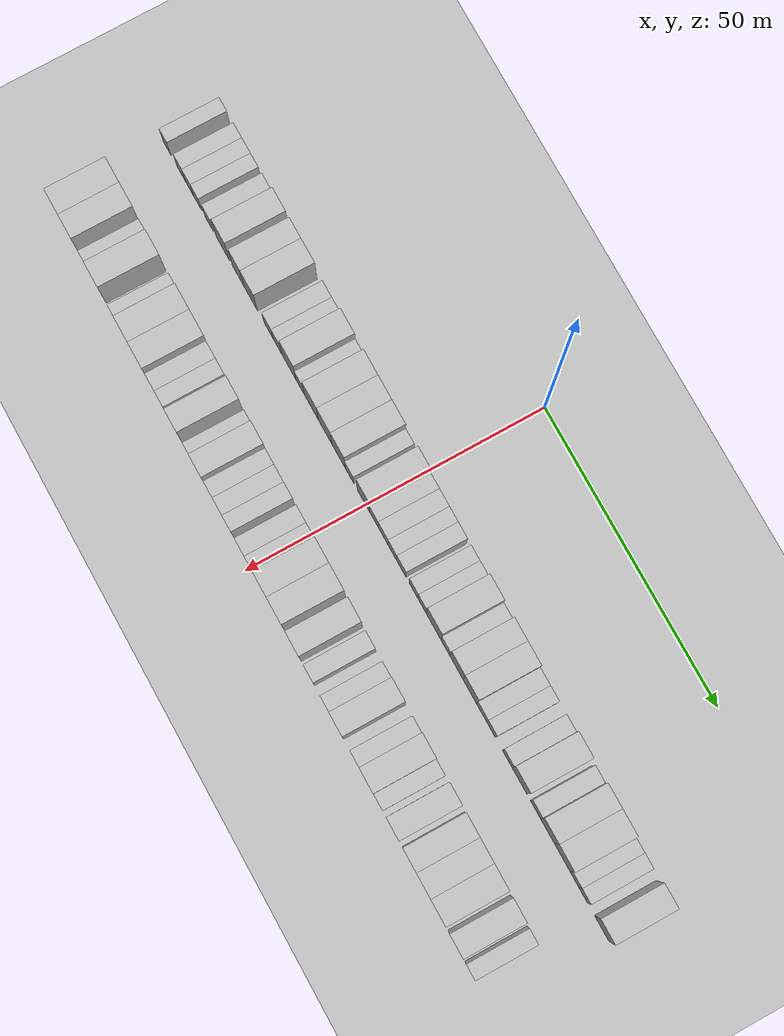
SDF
<sdf version="1.6">
 <world name="default">
  <include><name>ground_plane_1</name><uri>model://HANNAS_ground_plane</uri></include>
  <include>
   <name>ground_plane_2</name>
   <uri>model://HANNAS_ground_plane</uri>
   <pose>100 0 0  0 0 0</pose>
  </include>
  <model name="building_34">
   <static>1</static>
   <pose>25.0000 -61.7127 0 0.000000 0.000000 0.000000</pose>
   <link name="link">
    <pose>0 0 3.00 0 0 0</pose>
    <collision name="collision"><geometry><box><size>10.0000 2.4456 6.0000</size></box></geometry></collision>
    <visual name="visual">
     <cast_shadows>0</cast_shadows>
     <geometry><box><size>10.0000 2.4456 6.0000</size></box></geometry>
     <material>
      <script>
       <uri>model://HANNAS_wall/materials/scripts</uri>
       <uri>model://HANNAS_wall/materials/textures</uri>
       <name>vrc/HANNAS_wall</name>
      </script>
     </material>
    </visual>
   </link>
  </model>
  <model name="building_35">
   <static>1</static>
   <pose>25.0000 -57.1647 0 0.000000 0.000000 0.000000</pose>
   <link name="link">
    <pose>0 0 3.00 0 0 0</pose>
    <collision name="collision"><geometry><box><size>10.0000 2.6504 6.0000</size></box></geometry></collision>
    <visual name="visual">
     <cast_shadows>0</cast_shadows>
     <geometry><box><size>10.0000 2.6504 6.0000</size></box></geometry>
     <material>
      <script>
       <uri>model://HANNAS_wall/materials/scripts</uri>
       <uri>model://HANNAS_wall/materials/textures</uri>
       <name>vrc/HANNAS_wall</name>
      </script>
     </material>
    </visual>
   </link>
  </model>
  <model name="building_36">
   <static>1</static>
   <pose>25.0000 -54.4928 0 0.000000 0.000000 0.000000</pose>
   <link name="link">
    <pose>0 0 3.00 0 0 0</pose>
    <collision name="collision"><geometry><box><size>10.0000 2.6936 6.0000</size></box></geometry></collision>
    <visual name="visual">
     <cast_shadows>0</cast_shadows>
     <geometry><box><size>10.0000 2.6936 6.0000</size></box></geometry>
     <material>
      <script>
       <uri>model://HANNAS_wall/materials/scripts</uri>
       <uri>model://HANNAS_wall/materials/textures</uri>
       <name>vrc/HANNAS_wall</name>
      </script>
     </material>
    </visual>
   </link>
  </model>
  <model name="building_37">
   <static>1</static>
   <pose>25.0000 -51.9126 0 0.000000 0.000000 0.000000</pose>
   <link name="link">
    <pose>0 0 3.00 0 0 0</pose>
    <collision name="collision"><geometry><box><size>10.0000 2.4667 6.0000</size></box></geometry></collision>
    <visual name="visual">
     <cast_shadows>0</cast_shadows>
     <geometry><box><size>10.0000 2.4667 6.0000</size></box></geometry>
     <material>
      <script>
       <uri>model://HANNAS_wall/materials/scripts</uri>
       <uri>model://HANNAS_wall/materials/textures</uri>
       <name>vrc/HANNAS_wall</name>
      </script>
     </material>
    </visual>
   </link>
  </model>
  <model name="building_38">
   <static>1</static>
   <pose>25.0000 -48.3581 0 0.000000 0.000000 0.000000</pose>
   <link name="link">
    <pose>0 0 3.00 0 0 0</pose>
    <collision name="collision"><geometry><box><size>10.0000 2.6423 6.0000</size></box></geometry></collision>
    <visual name="visual">
     <cast_shadows>0</cast_shadows>
     <geometry><box><size>10.0000 2.6423 6.0000</size></box></geometry>
     <material>
      <script>
       <uri>model://HANNAS_wall/materials/scripts</uri>
       <uri>model://HANNAS_wall/materials/textures</uri>
       <name>vrc/HANNAS_wall</name>
      </script>
     </material>
    </visual>
   </link>
  </model>
  <model name="building_39">
   <static>1</static>
   <pose>25.0000 -43.9781 0 0.000000 0.000000 0.000000</pose>
   <link name="link">
    <pose>0 0 4.50 0 0 0</pose>
    <collision name="collision"><geometry><box><size>10.0000 4.1177 9.0000</size></box></geometry></collision>
    <visual name="visual">
     <cast_shadows>0</cast_shadows>
     <geometry><box><size>10.0000 4.1177 9.0000</size></box></geometry>
     <material>
      <script>
       <uri>model://HANNAS_wall/materials/scripts</uri>
       <uri>model://HANNAS_wall/materials/textures</uri>
       <name>vrc/HANNAS_wall</name>
      </script>
     </material>
    </visual>
   </link>
  </model>
  <model name="building_40">
   <static>1</static>
   <pose>25.0000 -39.1123 0 0.000000 0.000000 0.000000</pose>
   <link name="link">
    <pose>0 0 4.50 0 0 0</pose>
    <collision name="collision"><geometry><box><size>10.0000 3.6139 9.0000</size></box></geometry></collision>
    <visual name="visual">
     <cast_shadows>0</cast_shadows>
     <geometry><box><size>10.0000 3.6139 9.0000</size></box></geometry>
     <material>
      <script>
       <uri>model://HANNAS_wall/materials/scripts</uri>
       <uri>model://HANNAS_wall/materials/textures</uri>
       <name>vrc/HANNAS_wall</name>
      </script>
     </material>
    </visual>
   </link>
  </model>
  <model name="building_41">
   <static>1</static>
   <pose>25.0000 -35.2139 0 0.000000 0.000000 0.000000</pose>
   <link name="link">
    <pose>0 0 4.50 0 0 0</pose>
    <collision name="collision"><geometry><box><size>10.0000 4.1830 9.0000</size></box></geometry></collision>
    <visual name="visual">
     <cast_shadows>0</cast_shadows>
     <geometry><box><size>10.0000 4.1830 9.0000</size></box></geometry>
     <material>
      <script>
       <uri>model://HANNAS_wall/materials/scripts</uri>
       <uri>model://HANNAS_wall/materials/textures</uri>
       <name>vrc/HANNAS_wall</name>
      </script>
     </material>
    </visual>
   </link>
  </model>
  <model name="building_42">
   <static>1</static>
   <pose>25.0000 -29.6990 0 0.000000 0.000000 0.000000</pose>
   <link name="link">
    <pose>0 0 3.00 0 0 0</pose>
    <collision name="collision"><geometry><box><size>10.0000 2.8468 6.0000</size></box></geometry></collision>
    <visual name="visual">
     <cast_shadows>0</cast_shadows>
     <geometry><box><size>10.0000 2.8468 6.0000</size></box></geometry>
     <material>
      <script>
       <uri>model://HANNAS_wall/materials/scripts</uri>
       <uri>model://HANNAS_wall/materials/textures</uri>
       <name>vrc/HANNAS_wall</name>
      </script>
     </material>
    </visual>
   </link>
  </model>
  <model name="building_43">
   <static>1</static>
   <pose>25.0000 -26.8879 0 0.000000 0.000000 0.000000</pose>
   <link name="link">
    <pose>0 0 3.00 0 0 0</pose>
    <collision name="collision"><geometry><box><size>10.0000 2.7754 6.0000</size></box></geometry></collision>
    <visual name="visual">
     <cast_shadows>0</cast_shadows>
     <geometry><box><size>10.0000 2.7754 6.0000</size></box></geometry>
     <material>
      <script>
       <uri>model://HANNAS_wall/materials/scripts</uri>
       <uri>model://HANNAS_wall/materials/textures</uri>
       <name>vrc/HANNAS_wall</name>
      </script>
     </material>
    </visual>
   </link>
  </model>
  <model name="building_44">
   <static>1</static>
   <pose>25.0000 -23.3511 0 0.000000 0.000000 0.000000</pose>
   <link name="link">
    <pose>0 0 4.50 0 0 0</pose>
    <collision name="collision"><geometry><box><size>10.0000 4.2981 9.0000</size></box></geometry></collision>
    <visual name="visual">
     <cast_shadows>0</cast_shadows>
     <geometry><box><size>10.0000 4.2981 9.0000</size></box></geometry>
     <material>
      <script>
       <uri>model://HANNAS_wall/materials/scripts</uri>
       <uri>model://HANNAS_wall/materials/textures</uri>
       <name>vrc/HANNAS_wall</name>
      </script>
     </material>
    </visual>
   </link>
  </model>
  <model name="building_45">
   <static>1</static>
   <pose>25.0000 -19.9102 0 0.000000 0.000000 0.000000</pose>
   <link name="link">
    <pose>0 0 3.00 0 0 0</pose>
    <collision name="collision"><geometry><box><size>10.0000 2.5838 6.0000</size></box></geometry></collision>
    <visual name="visual">
     <cast_shadows>0</cast_shadows>
     <geometry><box><size>10.0000 2.5838 6.0000</size></box></geometry>
     <material>
      <script>
       <uri>model://HANNAS_wall/materials/scripts</uri>
       <uri>model://HANNAS_wall/materials/textures</uri>
       <name>vrc/HANNAS_wall</name>
      </script>
     </material>
    </visual>
   </link>
  </model>
  <model name="building_46">
   <static>1</static>
   <pose>25.0000 -16.4606 0 0.000000 0.000000 0.000000</pose>
   <link name="link">
    <pose>0 0 4.50 0 0 0</pose>
    <collision name="collision"><geometry><box><size>10.0000 4.3153 9.0000</size></box></geometry></collision>
    <visual name="visual">
     <cast_shadows>0</cast_shadows>
     <geometry><box><size>10.0000 4.3153 9.0000</size></box></geometry>
     <material>
      <script>
       <uri>model://HANNAS_wall/materials/scripts</uri>
       <uri>model://HANNAS_wall/materials/textures</uri>
       <name>vrc/HANNAS_wall</name>
      </script>
     </material>
    </visual>
   </link>
  </model>
  <model name="building_47">
   <static>1</static>
   <pose>25.0000 -12.2631 0 0.000000 0.000000 0.000000</pose>
   <link name="link">
    <pose>0 0 4.50 0 0 0</pose>
    <collision name="collision"><geometry><box><size>10.0000 4.0795 9.0000</size></box></geometry></collision>
    <visual name="visual">
     <cast_shadows>0</cast_shadows>
     <geometry><box><size>10.0000 4.0795 9.0000</size></box></geometry>
     <material>
      <script>
       <uri>model://HANNAS_wall/materials/scripts</uri>
       <uri>model://HANNAS_wall/materials/textures</uri>
       <name>vrc/HANNAS_wall</name>
      </script>
     </material>
    </visual>
   </link>
  </model>
  <model name="building_48">
   <static>1</static>
   <pose>25.0000 -8.1758 0 0.000000 0.000000 0.000000</pose>
   <link name="link">
    <pose>0 0 4.50 0 0 0</pose>
    <collision name="collision"><geometry><box><size>10.0000 4.0951 9.0000</size></box></geometry></collision>
    <visual name="visual">
     <cast_shadows>0</cast_shadows>
     <geometry><box><size>10.0000 4.0951 9.0000</size></box></geometry>
     <material>
      <script>
       <uri>model://HANNAS_wall/materials/scripts</uri>
       <uri>model://HANNAS_wall/materials/textures</uri>
       <name>vrc/HANNAS_wall</name>
      </script>
     </material>
    </visual>
   </link>
  </model>
  <model name="building_49">
   <static>1</static>
   <pose>25.0000 -4.8378 0 0.000000 0.000000 0.000000</pose>
   <link name="link">
    <pose>0 0 3.00 0 0 0</pose>
    <collision name="collision"><geometry><box><size>10.0000 2.5807 6.0000</size></box></geometry></collision>
    <visual name="visual">
     <cast_shadows>0</cast_shadows>
     <geometry><box><size>10.0000 2.5807 6.0000</size></box></geometry>
     <material>
      <script>
       <uri>model://HANNAS_wall/materials/scripts</uri>
       <uri>model://HANNAS_wall/materials/textures</uri>
       <name>vrc/HANNAS_wall</name>
      </script>
     </material>
    </visual>
   </link>
  </model>
  <model name="building_50">
   <static>1</static>
   <pose>25.0000 -0.6598 0 0.000000 0.000000 0.000000</pose>
   <link name="link">
    <pose>0 0 4.50 0 0 0</pose>
    <collision name="collision"><geometry><box><size>10.0000 3.7753 9.0000</size></box></geometry></collision>
    <visual name="visual">
     <cast_shadows>0</cast_shadows>
     <geometry><box><size>10.0000 3.7753 9.0000</size></box></geometry>
     <material>
      <script>
       <uri>model://HANNAS_wall/materials/scripts</uri>
       <uri>model://HANNAS_wall/materials/textures</uri>
       <name>vrc/HANNAS_wall</name>
      </script>
     </material>
    </visual>
   </link>
  </model>
  <model name="building_51">
   <static>1</static>
   <pose>25.0000 2.5211 0 0.000000 0.000000 0.000000</pose>
   <link name="link">
    <pose>0 0 3.00 0 0 0</pose>
    <collision name="collision"><geometry><box><size>10.0000 2.5867 6.0000</size></box></geometry></collision>
    <visual name="visual">
     <cast_shadows>0</cast_shadows>
     <geometry><box><size>10.0000 2.5867 6.0000</size></box></geometry>
     <material>
      <script>
       <uri>model://HANNAS_wall/materials/scripts</uri>
       <uri>model://HANNAS_wall/materials/textures</uri>
       <name>vrc/HANNAS_wall</name>
      </script>
     </material>
    </visual>
   </link>
  </model>
  <model name="building_52">
   <static>1</static>
   <pose>25.0000 5.2859 0 0.000000 0.000000 0.000000</pose>
   <link name="link">
    <pose>0 0 3.00 0 0 0</pose>
    <collision name="collision"><geometry><box><size>10.0000 2.9429 6.0000</size></box></geometry></collision>
    <visual name="visual">
     <cast_shadows>0</cast_shadows>
     <geometry><box><size>10.0000 2.9429 6.0000</size></box></geometry>
     <material>
      <script>
       <uri>model://HANNAS_wall/materials/scripts</uri>
       <uri>model://HANNAS_wall/materials/textures</uri>
       <name>vrc/HANNAS_wall</name>
      </script>
     </material>
    </visual>
   </link>
  </model>
  <model name="building_53">
   <static>1</static>
   <pose>25.0000 8.0348 0 0.000000 0.000000 0.000000</pose>
   <link name="link">
    <pose>0 0 3.00 0 0 0</pose>
    <collision name="collision"><geometry><box><size>10.0000 2.5548 6.0000</size></box></geometry></collision>
    <visual name="visual">
     <cast_shadows>0</cast_shadows>
     <geometry><box><size>10.0000 2.5548 6.0000</size></box></geometry>
     <material>
      <script>
       <uri>model://HANNAS_wall/materials/scripts</uri>
       <uri>model://HANNAS_wall/materials/textures</uri>
       <name>vrc/HANNAS_wall</name>
      </script>
     </material>
    </visual>
   </link>
  </model>
  <model name="building_54">
   <static>1</static>
   <pose>25.0000 10.6931 0 0.000000 0.000000 0.000000</pose>
   <link name="link">
    <pose>0 0 3.00 0 0 0</pose>
    <collision name="collision"><geometry><box><size>10.0000 2.7617 6.0000</size></box></geometry></collision>
    <visual name="visual">
     <cast_shadows>0</cast_shadows>
     <geometry><box><size>10.0000 2.7617 6.0000</size></box></geometry>
     <material>
      <script>
       <uri>model://HANNAS_wall/materials/scripts</uri>
       <uri>model://HANNAS_wall/materials/textures</uri>
       <name>vrc/HANNAS_wall</name>
      </script>
     </material>
    </visual>
   </link>
  </model>
  <model name="building_55">
   <static>1</static>
   <pose>25.0000 14.3630 0 0.000000 0.000000 0.000000</pose>
   <link name="link">
    <pose>0 0 3.00 0 0 0</pose>
    <collision name="collision"><geometry><box><size>10.0000 2.5780 6.0000</size></box></geometry></collision>
    <visual name="visual">
     <cast_shadows>0</cast_shadows>
     <geometry><box><size>10.0000 2.5780 6.0000</size></box></geometry>
     <material>
      <script>
       <uri>model://HANNAS_wall/materials/scripts</uri>
       <uri>model://HANNAS_wall/materials/textures</uri>
       <name>vrc/HANNAS_wall</name>
      </script>
     </material>
    </visual>
   </link>
  </model>
  <model name="building_56">
   <static>1</static>
   <pose>25.0000 16.9307 0 0.000000 0.000000 0.000000</pose>
   <link name="link">
    <pose>0 0 3.00 0 0 0</pose>
    <collision name="collision"><geometry><box><size>10.0000 2.5575 6.0000</size></box></geometry></collision>
    <visual name="visual">
     <cast_shadows>0</cast_shadows>
     <geometry><box><size>10.0000 2.5575 6.0000</size></box></geometry>
     <material>
      <script>
       <uri>model://HANNAS_wall/materials/scripts</uri>
       <uri>model://HANNAS_wall/materials/textures</uri>
       <name>vrc/HANNAS_wall</name>
      </script>
     </material>
    </visual>
   </link>
  </model>
  <model name="building_57">
   <static>1</static>
   <pose>25.0000 20.3381 0 0.000000 0.000000 0.000000</pose>
   <link name="link">
    <pose>0 0 4.50 0 0 0</pose>
    <collision name="collision"><geometry><box><size>10.0000 4.2573 9.0000</size></box></geometry></collision>
    <visual name="visual">
     <cast_shadows>0</cast_shadows>
     <geometry><box><size>10.0000 4.2573 9.0000</size></box></geometry>
     <material>
      <script>
       <uri>model://HANNAS_wall/materials/scripts</uri>
       <uri>model://HANNAS_wall/materials/textures</uri>
       <name>vrc/HANNAS_wall</name>
      </script>
     </material>
    </visual>
   </link>
  </model>
  <model name="building_58">
   <static>1</static>
   <pose>25.0000 23.8044 0 0.000000 0.000000 0.000000</pose>
   <link name="link">
    <pose>0 0 3.00 0 0 0</pose>
    <collision name="collision"><geometry><box><size>10.0000 2.6753 6.0000</size></box></geometry></collision>
    <visual name="visual">
     <cast_shadows>0</cast_shadows>
     <geometry><box><size>10.0000 2.6753 6.0000</size></box></geometry>
     <material>
      <script>
       <uri>model://HANNAS_wall/materials/scripts</uri>
       <uri>model://HANNAS_wall/materials/textures</uri>
       <name>vrc/HANNAS_wall</name>
      </script>
     </material>
    </visual>
   </link>
  </model>
  <model name="building_59">
   <static>1</static>
   <pose>25.0000 27.0463 0 0.000000 0.000000 0.000000</pose>
   <link name="link">
    <pose>0 0 4.50 0 0 0</pose>
    <collision name="collision"><geometry><box><size>10.0000 3.8084 9.0000</size></box></geometry></collision>
    <visual name="visual">
     <cast_shadows>0</cast_shadows>
     <geometry><box><size>10.0000 3.8084 9.0000</size></box></geometry>
     <material>
      <script>
       <uri>model://HANNAS_wall/materials/scripts</uri>
       <uri>model://HANNAS_wall/materials/textures</uri>
       <name>vrc/HANNAS_wall</name>
      </script>
     </material>
    </visual>
   </link>
  </model>
  <model name="building_60">
   <static>1</static>
   <pose>25.0000 30.9285 0 0.000000 0.000000 0.000000</pose>
   <link name="link">
    <pose>0 0 4.50 0 0 0</pose>
    <collision name="collision"><geometry><box><size>10.0000 3.9560 9.0000</size></box></geometry></collision>
    <visual name="visual">
     <cast_shadows>0</cast_shadows>
     <geometry><box><size>10.0000 3.9560 9.0000</size></box></geometry>
     <material>
      <script>
       <uri>model://HANNAS_wall/materials/scripts</uri>
       <uri>model://HANNAS_wall/materials/textures</uri>
       <name>vrc/HANNAS_wall</name>
      </script>
     </material>
    </visual>
   </link>
  </model>
  <model name="building_61">
   <static>1</static>
   <pose>25.0000 34.3720 0 0.000000 0.000000 0.000000</pose>
   <link name="link">
    <pose>0 0 3.00 0 0 0</pose>
    <collision name="collision"><geometry><box><size>10.0000 2.9311 6.0000</size></box></geometry></collision>
    <visual name="visual">
     <cast_shadows>0</cast_shadows>
     <geometry><box><size>10.0000 2.9311 6.0000</size></box></geometry>
     <material>
      <script>
       <uri>model://HANNAS_wall/materials/scripts</uri>
       <uri>model://HANNAS_wall/materials/textures</uri>
       <name>vrc/HANNAS_wall</name>
      </script>
     </material>
    </visual>
   </link>
  </model>
  <model name="building_62">
   <static>1</static>
   <pose>25.0000 37.1161 0 0.000000 0.000000 0.000000</pose>
   <link name="link">
    <pose>0 0 3.00 0 0 0</pose>
    <collision name="collision"><geometry><box><size>10.0000 2.5571 6.0000</size></box></geometry></collision>
    <visual name="visual">
     <cast_shadows>0</cast_shadows>
     <geometry><box><size>10.0000 2.5571 6.0000</size></box></geometry>
     <material>
      <script>
       <uri>model://HANNAS_wall/materials/scripts</uri>
       <uri>model://HANNAS_wall/materials/textures</uri>
       <name>vrc/HANNAS_wall</name>
      </script>
     </material>
    </visual>
   </link>
  </model>
  <model name="building_63">
   <static>1</static>
   <pose>25.0000 41.8110 0 0.000000 0.000000 0.000000</pose>
   <link name="link">
    <pose>0 0 3.00 0 0 0</pose>
    <collision name="collision"><geometry><box><size>10.0000 2.8327 6.0000</size></box></geometry></collision>
    <visual name="visual">
     <cast_shadows>0</cast_shadows>
     <geometry><box><size>10.0000 2.8327 6.0000</size></box></geometry>
     <material>
      <script>
       <uri>model://HANNAS_wall/materials/scripts</uri>
       <uri>model://HANNAS_wall/materials/textures</uri>
       <name>vrc/HANNAS_wall</name>
      </script>
     </material>
    </visual>
   </link>
  </model>
  <model name="building_64">
   <static>1</static>
   <pose>25.0000 45.3492 0 0.000000 0.000000 0.000000</pose>
   <link name="link">
    <pose>0 0 4.50 0 0 0</pose>
    <collision name="collision"><geometry><box><size>10.0000 4.2435 9.0000</size></box></geometry></collision>
    <visual name="visual">
     <cast_shadows>0</cast_shadows>
     <geometry><box><size>10.0000 4.2435 9.0000</size></box></geometry>
     <material>
      <script>
       <uri>model://HANNAS_wall/materials/scripts</uri>
       <uri>model://HANNAS_wall/materials/textures</uri>
       <name>vrc/HANNAS_wall</name>
      </script>
     </material>
    </visual>
   </link>
  </model>
  <model name="building_65">
   <static>1</static>
   <pose>25.0000 49.8806 0 0.000000 0.000000 0.000000</pose>
   <link name="link">
    <pose>0 0 3.00 0 0 0</pose>
    <collision name="collision"><geometry><box><size>10.0000 2.8192 6.0000</size></box></geometry></collision>
    <visual name="visual">
     <cast_shadows>0</cast_shadows>
     <geometry><box><size>10.0000 2.8192 6.0000</size></box></geometry>
     <material>
      <script>
       <uri>model://HANNAS_wall/materials/scripts</uri>
       <uri>model://HANNAS_wall/materials/textures</uri>
       <name>vrc/HANNAS_wall</name>
      </script>
     </material>
    </visual>
   </link>
  </model>
  <model name="building_66">
   <static>1</static>
   <pose>25.0000 53.3062 0 0.000000 0.000000 0.000000</pose>
   <link name="link">
    <pose>0 0 4.50 0 0 0</pose>
    <collision name="collision"><geometry><box><size>10.0000 4.0319 9.0000</size></box></geometry></collision>
    <visual name="visual">
     <cast_shadows>0</cast_shadows>
     <geometry><box><size>10.0000 4.0319 9.0000</size></box></geometry>
     <material>
      <script>
       <uri>model://HANNAS_wall/materials/scripts</uri>
       <uri>model://HANNAS_wall/materials/textures</uri>
       <name>vrc/HANNAS_wall</name>
      </script>
     </material>
    </visual>
   </link>
  </model>
  <model name="building_67">
   <static>1</static>
   <pose>25.0000 57.5089 0 0.000000 0.000000 0.000000</pose>
   <link name="link">
    <pose>0 0 4.50 0 0 0</pose>
    <collision name="collision"><geometry><box><size>10.0000 4.3735 9.0000</size></box></geometry></collision>
    <visual name="visual">
     <cast_shadows>0</cast_shadows>
     <geometry><box><size>10.0000 4.3735 9.0000</size></box></geometry>
     <material>
      <script>
       <uri>model://HANNAS_wall/materials/scripts</uri>
       <uri>model://HANNAS_wall/materials/textures</uri>
       <name>vrc/HANNAS_wall</name>
      </script>
     </material>
    </visual>
   </link>
  </model>
  <model name="building_68">
   <static>1</static>
   <pose>25.0000 60.9676 0 0.000000 0.000000 0.000000</pose>
   <link name="link">
    <pose>0 0 3.00 0 0 0</pose>
    <collision name="collision"><geometry><box><size>10.0000 2.5440 6.0000</size></box></geometry></collision>
    <visual name="visual">
     <cast_shadows>0</cast_shadows>
     <geometry><box><size>10.0000 2.5440 6.0000</size></box></geometry>
     <material>
      <script>
       <uri>model://HANNAS_wall/materials/scripts</uri>
       <uri>model://HANNAS_wall/materials/textures</uri>
       <name>vrc/HANNAS_wall</name>
      </script>
     </material>
    </visual>
   </link>
  </model>
  <model name="building_69">
   <static>1</static>
   <pose>25.0000 63.4900 0 0.000000 0.000000 0.000000</pose>
   <link name="link">
    <pose>0 0 3.00 0 0 0</pose>
    <collision name="collision"><geometry><box><size>10.0000 2.5008 6.0000</size></box></geometry></collision>
    <visual name="visual">
     <cast_shadows>0</cast_shadows>
     <geometry><box><size>10.0000 2.5008 6.0000</size></box></geometry>
     <material>
      <script>
       <uri>model://HANNAS_wall/materials/scripts</uri>
       <uri>model://HANNAS_wall/materials/textures</uri>
       <name>vrc/HANNAS_wall</name>
      </script>
     </material>
    </visual>
   </link>
  </model>
  <model name="building_70">
   <static>1</static>
   <pose>25.0000 68.7523 0 0.000000 0.000000 0.000000</pose>
   <link name="link">
    <pose>0 0 4.50 0 0 0</pose>
    <collision name="collision"><geometry><box><size>10.0000 4.0240 9.0000</size></box></geometry></collision>
    <visual name="visual">
     <cast_shadows>0</cast_shadows>
     <geometry><box><size>10.0000 4.0240 9.0000</size></box></geometry>
     <material>
      <script>
       <uri>model://HANNAS_wall/materials/scripts</uri>
       <uri>model://HANNAS_wall/materials/textures</uri>
       <name>vrc/HANNAS_wall</name>
      </script>
     </material>
    </visual>
   </link>
  </model>
  <model name="building_142">
   <static>1</static>
   <pose>44.0000 -59.5723 0 0.000000 0.000000 0.000000</pose>
   <link name="link">
    <pose>0 0 4.50 0 0 0</pose>
    <collision name="collision"><geometry><box><size>10.0000 4.3911 9.0000</size></box></geometry></collision>
    <visual name="visual">
     <cast_shadows>0</cast_shadows>
     <geometry><box><size>10.0000 4.3911 9.0000</size></box></geometry>
     <material>
      <script>
       <uri>model://HANNAS_wall/materials/scripts</uri>
       <uri>model://HANNAS_wall/materials/textures</uri>
       <name>vrc/HANNAS_wall</name>
      </script>
     </material>
    </visual>
   </link>
  </model>
  <model name="building_143">
   <static>1</static>
   <pose>44.0000 -55.3011 0 0.000000 0.000000 0.000000</pose>
   <link name="link">
    <pose>0 0 4.50 0 0 0</pose>
    <collision name="collision"><geometry><box><size>10.0000 4.1513 9.0000</size></box></geometry></collision>
    <visual name="visual">
     <cast_shadows>0</cast_shadows>
     <geometry><box><size>10.0000 4.1513 9.0000</size></box></geometry>
     <material>
      <script>
       <uri>model://HANNAS_wall/materials/scripts</uri>
       <uri>model://HANNAS_wall/materials/textures</uri>
       <name>vrc/HANNAS_wall</name>
      </script>
     </material>
    </visual>
   </link>
  </model>
  <model name="building_144">
   <static>1</static>
   <pose>44.0000 -50.7851 0 0.000000 0.000000 0.000000</pose>
   <link name="link">
    <pose>0 0 3.00 0 0 0</pose>
    <collision name="collision"><geometry><box><size>10.0000 2.8808 6.0000</size></box></geometry></collision>
    <visual name="visual">
     <cast_shadows>0</cast_shadows>
     <geometry><box><size>10.0000 2.8808 6.0000</size></box></geometry>
     <material>
      <script>
       <uri>model://HANNAS_wall/materials/scripts</uri>
       <uri>model://HANNAS_wall/materials/textures</uri>
       <name>vrc/HANNAS_wall</name>
      </script>
     </material>
    </visual>
   </link>
  </model>
  <model name="building_145">
   <static>1</static>
   <pose>44.0000 -47.1643 0 0.000000 0.000000 0.000000</pose>
   <link name="link">
    <pose>0 0 4.50 0 0 0</pose>
    <collision name="collision"><geometry><box><size>10.0000 4.3607 9.0000</size></box></geometry></collision>
    <visual name="visual">
     <cast_shadows>0</cast_shadows>
     <geometry><box><size>10.0000 4.3607 9.0000</size></box></geometry>
     <material>
      <script>
       <uri>model://HANNAS_wall/materials/scripts</uri>
       <uri>model://HANNAS_wall/materials/textures</uri>
       <name>vrc/HANNAS_wall</name>
      </script>
     </material>
    </visual>
   </link>
  </model>
  <model name="building_146">
   <static>1</static>
   <pose>44.0000 -41.5841 0 0.000000 0.000000 0.000000</pose>
   <link name="link">
    <pose>0 0 3.00 0 0 0</pose>
    <collision name="collision"><geometry><box><size>10.0000 2.7998 6.0000</size></box></geometry></collision>
    <visual name="visual">
     <cast_shadows>0</cast_shadows>
     <geometry><box><size>10.0000 2.7998 6.0000</size></box></geometry>
     <material>
      <script>
       <uri>model://HANNAS_wall/materials/scripts</uri>
       <uri>model://HANNAS_wall/materials/textures</uri>
       <name>vrc/HANNAS_wall</name>
      </script>
     </material>
    </visual>
   </link>
  </model>
  <model name="building_147">
   <static>1</static>
   <pose>44.0000 -37.9833 0 0.000000 0.000000 0.000000</pose>
   <link name="link">
    <pose>0 0 4.50 0 0 0</pose>
    <collision name="collision"><geometry><box><size>10.0000 4.4017 9.0000</size></box></geometry></collision>
    <visual name="visual">
     <cast_shadows>0</cast_shadows>
     <geometry><box><size>10.0000 4.4017 9.0000</size></box></geometry>
     <material>
      <script>
       <uri>model://HANNAS_wall/materials/scripts</uri>
       <uri>model://HANNAS_wall/materials/textures</uri>
       <name>vrc/HANNAS_wall</name>
      </script>
     </material>
    </visual>
   </link>
  </model>
  <model name="building_148">
   <static>1</static>
   <pose>44.0000 -33.5647 0 0.000000 0.000000 0.000000</pose>
   <link name="link">
    <pose>0 0 4.50 0 0 0</pose>
    <collision name="collision"><geometry><box><size>10.0000 4.4355 9.0000</size></box></geometry></collision>
    <visual name="visual">
     <cast_shadows>0</cast_shadows>
     <geometry><box><size>10.0000 4.4355 9.0000</size></box></geometry>
     <material>
      <script>
       <uri>model://HANNAS_wall/materials/scripts</uri>
       <uri>model://HANNAS_wall/materials/textures</uri>
       <name>vrc/HANNAS_wall</name>
      </script>
     </material>
    </visual>
   </link>
  </model>
  <model name="building_149">
   <static>1</static>
   <pose>44.0000 -29.8882 0 0.000000 0.000000 0.000000</pose>
   <link name="link">
    <pose>0 0 3.00 0 0 0</pose>
    <collision name="collision"><geometry><box><size>10.0000 2.9176 6.0000</size></box></geometry></collision>
    <visual name="visual">
     <cast_shadows>0</cast_shadows>
     <geometry><box><size>10.0000 2.9176 6.0000</size></box></geometry>
     <material>
      <script>
       <uri>model://HANNAS_wall/materials/scripts</uri>
       <uri>model://HANNAS_wall/materials/textures</uri>
       <name>vrc/HANNAS_wall</name>
      </script>
     </material>
    </visual>
   </link>
  </model>
  <model name="building_150">
   <static>1</static>
   <pose>44.0000 -27.0637 0 0.000000 0.000000 0.000000</pose>
   <link name="link">
    <pose>0 0 3.00 0 0 0</pose>
    <collision name="collision"><geometry><box><size>10.0000 2.7314 6.0000</size></box></geometry></collision>
    <visual name="visual">
     <cast_shadows>0</cast_shadows>
     <geometry><box><size>10.0000 2.7314 6.0000</size></box></geometry>
     <material>
      <script>
       <uri>model://HANNAS_wall/materials/scripts</uri>
       <uri>model://HANNAS_wall/materials/textures</uri>
       <name>vrc/HANNAS_wall</name>
      </script>
     </material>
    </visual>
   </link>
  </model>
  <model name="building_151">
   <static>1</static>
   <pose>44.0000 -22.7349 0 0.000000 0.000000 0.000000</pose>
   <link name="link">
    <pose>0 0 4.50 0 0 0</pose>
    <collision name="collision"><geometry><box><size>10.0000 3.9262 9.0000</size></box></geometry></collision>
    <visual name="visual">
     <cast_shadows>0</cast_shadows>
     <geometry><box><size>10.0000 3.9262 9.0000</size></box></geometry>
     <material>
      <script>
       <uri>model://HANNAS_wall/materials/scripts</uri>
       <uri>model://HANNAS_wall/materials/textures</uri>
       <name>vrc/HANNAS_wall</name>
      </script>
     </material>
    </visual>
   </link>
  </model>
  <model name="building_152">
   <static>1</static>
   <pose>44.0000 -18.5102 0 0.000000 0.000000 0.000000</pose>
   <link name="link">
    <pose>0 0 3.00 0 0 0</pose>
    <collision name="collision"><geometry><box><size>10.0000 2.5233 6.0000</size></box></geometry></collision>
    <visual name="visual">
     <cast_shadows>0</cast_shadows>
     <geometry><box><size>10.0000 2.5233 6.0000</size></box></geometry>
     <material>
      <script>
       <uri>model://HANNAS_wall/materials/scripts</uri>
       <uri>model://HANNAS_wall/materials/textures</uri>
       <name>vrc/HANNAS_wall</name>
      </script>
     </material>
    </visual>
   </link>
  </model>
  <model name="building_153">
   <static>1</static>
   <pose>44.0000 -15.3217 0 0.000000 0.000000 0.000000</pose>
   <link name="link">
    <pose>0 0 4.50 0 0 0</pose>
    <collision name="collision"><geometry><box><size>10.0000 3.8537 9.0000</size></box></geometry></collision>
    <visual name="visual">
     <cast_shadows>0</cast_shadows>
     <geometry><box><size>10.0000 3.8537 9.0000</size></box></geometry>
     <material>
      <script>
       <uri>model://HANNAS_wall/materials/scripts</uri>
       <uri>model://HANNAS_wall/materials/textures</uri>
       <name>vrc/HANNAS_wall</name>
      </script>
     </material>
    </visual>
   </link>
  </model>
  <model name="building_154">
   <static>1</static>
   <pose>44.0000 -12.0341 0 0.000000 0.000000 0.000000</pose>
   <link name="link">
    <pose>0 0 3.00 0 0 0</pose>
    <collision name="collision"><geometry><box><size>10.0000 2.7215 6.0000</size></box></geometry></collision>
    <visual name="visual">
     <cast_shadows>0</cast_shadows>
     <geometry><box><size>10.0000 2.7215 6.0000</size></box></geometry>
     <material>
      <script>
       <uri>model://HANNAS_wall/materials/scripts</uri>
       <uri>model://HANNAS_wall/materials/textures</uri>
       <name>vrc/HANNAS_wall</name>
      </script>
     </material>
    </visual>
   </link>
  </model>
  <model name="building_155">
   <static>1</static>
   <pose>44.0000 -9.2175 0 0.000000 0.000000 0.000000</pose>
   <link name="link">
    <pose>0 0 3.00 0 0 0</pose>
    <collision name="collision"><geometry><box><size>10.0000 2.9118 6.0000</size></box></geometry></collision>
    <visual name="visual">
     <cast_shadows>0</cast_shadows>
     <geometry><box><size>10.0000 2.9118 6.0000</size></box></geometry>
     <material>
      <script>
       <uri>model://HANNAS_wall/materials/scripts</uri>
       <uri>model://HANNAS_wall/materials/textures</uri>
       <name>vrc/HANNAS_wall</name>
      </script>
     </material>
    </visual>
   </link>
  </model>
  <model name="building_156">
   <static>1</static>
   <pose>44.0000 -6.3921 0 0.000000 0.000000 0.000000</pose>
   <link name="link">
    <pose>0 0 3.00 0 0 0</pose>
    <collision name="collision"><geometry><box><size>10.0000 2.7390 6.0000</size></box></geometry></collision>
    <visual name="visual">
     <cast_shadows>0</cast_shadows>
     <geometry><box><size>10.0000 2.7390 6.0000</size></box></geometry>
     <material>
      <script>
       <uri>model://HANNAS_wall/materials/scripts</uri>
       <uri>model://HANNAS_wall/materials/textures</uri>
       <name>vrc/HANNAS_wall</name>
      </script>
     </material>
    </visual>
   </link>
  </model>
  <model name="building_157">
   <static>1</static>
   <pose>44.0000 -2.5382 0 0.000000 0.000000 0.000000</pose>
   <link name="link">
    <pose>0 0 3.00 0 0 0</pose>
    <collision name="collision"><geometry><box><size>10.0000 2.9688 6.0000</size></box></geometry></collision>
    <visual name="visual">
     <cast_shadows>0</cast_shadows>
     <geometry><box><size>10.0000 2.9688 6.0000</size></box></geometry>
     <material>
      <script>
       <uri>model://HANNAS_wall/materials/scripts</uri>
       <uri>model://HANNAS_wall/materials/textures</uri>
       <name>vrc/HANNAS_wall</name>
      </script>
     </material>
    </visual>
   </link>
  </model>
  <model name="building_158">
   <static>1</static>
   <pose>44.0000 0.3325 0 0.000000 0.000000 0.000000</pose>
   <link name="link">
    <pose>0 0 3.00 0 0 0</pose>
    <collision name="collision"><geometry><box><size>10.0000 2.7726 6.0000</size></box></geometry></collision>
    <visual name="visual">
     <cast_shadows>0</cast_shadows>
     <geometry><box><size>10.0000 2.7726 6.0000</size></box></geometry>
     <material>
      <script>
       <uri>model://HANNAS_wall/materials/scripts</uri>
       <uri>model://HANNAS_wall/materials/textures</uri>
       <name>vrc/HANNAS_wall</name>
      </script>
     </material>
    </visual>
   </link>
  </model>
  <model name="building_159">
   <static>1</static>
   <pose>44.0000 3.8467 0 0.000000 0.000000 0.000000</pose>
   <link name="link">
    <pose>0 0 4.50 0 0 0</pose>
    <collision name="collision"><geometry><box><size>10.0000 4.2558 9.0000</size></box></geometry></collision>
    <visual name="visual">
     <cast_shadows>0</cast_shadows>
     <geometry><box><size>10.0000 4.2558 9.0000</size></box></geometry>
     <material>
      <script>
       <uri>model://HANNAS_wall/materials/scripts</uri>
       <uri>model://HANNAS_wall/materials/textures</uri>
       <name>vrc/HANNAS_wall</name>
      </script>
     </material>
    </visual>
   </link>
  </model>
  <model name="building_160">
   <static>1</static>
   <pose>44.0000 8.1950 0 0.000000 0.000000 0.000000</pose>
   <link name="link">
    <pose>0 0 4.50 0 0 0</pose>
    <collision name="collision"><geometry><box><size>10.0000 4.4410 9.0000</size></box></geometry></collision>
    <visual name="visual">
     <cast_shadows>0</cast_shadows>
     <geometry><box><size>10.0000 4.4410 9.0000</size></box></geometry>
     <material>
      <script>
       <uri>model://HANNAS_wall/materials/scripts</uri>
       <uri>model://HANNAS_wall/materials/textures</uri>
       <name>vrc/HANNAS_wall</name>
      </script>
     </material>
    </visual>
   </link>
  </model>
  <model name="building_161">
   <static>1</static>
   <pose>44.0000 13.4465 0 0.000000 0.000000 0.000000</pose>
   <link name="link">
    <pose>0 0 4.50 0 0 0</pose>
    <collision name="collision"><geometry><box><size>10.0000 4.0620 9.0000</size></box></geometry></collision>
    <visual name="visual">
     <cast_shadows>0</cast_shadows>
     <geometry><box><size>10.0000 4.0620 9.0000</size></box></geometry>
     <material>
      <script>
       <uri>model://HANNAS_wall/materials/scripts</uri>
       <uri>model://HANNAS_wall/materials/textures</uri>
       <name>vrc/HANNAS_wall</name>
      </script>
     </material>
    </visual>
   </link>
  </model>
  <model name="building_162">
   <static>1</static>
   <pose>44.0000 17.9593 0 0.000000 0.000000 0.000000</pose>
   <link name="link">
    <pose>0 0 3.00 0 0 0</pose>
    <collision name="collision"><geometry><box><size>10.0000 2.9635 6.0000</size></box></geometry></collision>
    <visual name="visual">
     <cast_shadows>0</cast_shadows>
     <geometry><box><size>10.0000 2.9635 6.0000</size></box></geometry>
     <material>
      <script>
       <uri>model://HANNAS_wall/materials/scripts</uri>
       <uri>model://HANNAS_wall/materials/textures</uri>
       <name>vrc/HANNAS_wall</name>
      </script>
     </material>
    </visual>
   </link>
  </model>
  <model name="building_163">
   <static>1</static>
   <pose>44.0000 22.8355 0 0.000000 0.000000 0.000000</pose>
   <link name="link">
    <pose>0 0 3.00 0 0 0</pose>
    <collision name="collision"><geometry><box><size>10.0000 2.7889 6.0000</size></box></geometry></collision>
    <visual name="visual">
     <cast_shadows>0</cast_shadows>
     <geometry><box><size>10.0000 2.7889 6.0000</size></box></geometry>
     <material>
      <script>
       <uri>model://HANNAS_wall/materials/scripts</uri>
       <uri>model://HANNAS_wall/materials/textures</uri>
       <name>vrc/HANNAS_wall</name>
      </script>
     </material>
    </visual>
   </link>
  </model>
  <model name="building_164">
   <static>1</static>
   <pose>44.0000 26.1865 0 0.000000 0.000000 0.000000</pose>
   <link name="link">
    <pose>0 0 4.50 0 0 0</pose>
    <collision name="collision"><geometry><box><size>10.0000 3.9131 9.0000</size></box></geometry></collision>
    <visual name="visual">
     <cast_shadows>0</cast_shadows>
     <geometry><box><size>10.0000 3.9131 9.0000</size></box></geometry>
     <material>
      <script>
       <uri>model://HANNAS_wall/materials/scripts</uri>
       <uri>model://HANNAS_wall/materials/textures</uri>
       <name>vrc/HANNAS_wall</name>
      </script>
     </material>
    </visual>
   </link>
  </model>
  <model name="building_165">
   <static>1</static>
   <pose>44.0000 31.5419 0 0.000000 0.000000 0.000000</pose>
   <link name="link">
    <pose>0 0 3.00 0 0 0</pose>
    <collision name="collision"><geometry><box><size>10.0000 2.7977 6.0000</size></box></geometry></collision>
    <visual name="visual">
     <cast_shadows>0</cast_shadows>
     <geometry><box><size>10.0000 2.7977 6.0000</size></box></geometry>
     <material>
      <script>
       <uri>model://HANNAS_wall/materials/scripts</uri>
       <uri>model://HANNAS_wall/materials/textures</uri>
       <name>vrc/HANNAS_wall</name>
      </script>
     </material>
    </visual>
   </link>
  </model>
  <model name="building_166">
   <static>1</static>
   <pose>44.0000 34.9837 0 0.000000 0.000000 0.000000</pose>
   <link name="link">
    <pose>0 0 4.50 0 0 0</pose>
    <collision name="collision"><geometry><box><size>10.0000 4.0860 9.0000</size></box></geometry></collision>
    <visual name="visual">
     <cast_shadows>0</cast_shadows>
     <geometry><box><size>10.0000 4.0860 9.0000</size></box></geometry>
     <material>
      <script>
       <uri>model://HANNAS_wall/materials/scripts</uri>
       <uri>model://HANNAS_wall/materials/textures</uri>
       <name>vrc/HANNAS_wall</name>
      </script>
     </material>
    </visual>
   </link>
  </model>
  <model name="building_167">
   <static>1</static>
   <pose>44.0000 38.3511 0 0.000000 0.000000 0.000000</pose>
   <link name="link">
    <pose>0 0 3.00 0 0 0</pose>
    <collision name="collision"><geometry><box><size>10.0000 2.6487 6.0000</size></box></geometry></collision>
    <visual name="visual">
     <cast_shadows>0</cast_shadows>
     <geometry><box><size>10.0000 2.6487 6.0000</size></box></geometry>
     <material>
      <script>
       <uri>model://HANNAS_wall/materials/scripts</uri>
       <uri>model://HANNAS_wall/materials/textures</uri>
       <name>vrc/HANNAS_wall</name>
      </script>
     </material>
    </visual>
   </link>
  </model>
  <model name="building_168">
   <static>1</static>
   <pose>44.0000 42.5205 0 0.000000 0.000000 0.000000</pose>
   <link name="link">
    <pose>0 0 4.50 0 0 0</pose>
    <collision name="collision"><geometry><box><size>10.0000 3.6902 9.0000</size></box></geometry></collision>
    <visual name="visual">
     <cast_shadows>0</cast_shadows>
     <geometry><box><size>10.0000 3.6902 9.0000</size></box></geometry>
     <material>
      <script>
       <uri>model://HANNAS_wall/materials/scripts</uri>
       <uri>model://HANNAS_wall/materials/textures</uri>
       <name>vrc/HANNAS_wall</name>
      </script>
     </material>
    </visual>
   </link>
  </model>
  <model name="building_169">
   <static>1</static>
   <pose>44.0000 47.3168 0 0.000000 0.000000 0.000000</pose>
   <link name="link">
    <pose>0 0 4.50 0 0 0</pose>
    <collision name="collision"><geometry><box><size>10.0000 3.9023 9.0000</size></box></geometry></collision>
    <visual name="visual">
     <cast_shadows>0</cast_shadows>
     <geometry><box><size>10.0000 3.9023 9.0000</size></box></geometry>
     <material>
      <script>
       <uri>model://HANNAS_wall/materials/scripts</uri>
       <uri>model://HANNAS_wall/materials/textures</uri>
       <name>vrc/HANNAS_wall</name>
      </script>
     </material>
    </visual>
   </link>
  </model>
  <model name="building_170">
   <static>1</static>
   <pose>44.0000 51.2787 0 0.000000 0.000000 0.000000</pose>
   <link name="link">
    <pose>0 0 4.50 0 0 0</pose>
    <collision name="collision"><geometry><box><size>10.0000 4.0216 9.0000</size></box></geometry></collision>
    <visual name="visual">
     <cast_shadows>0</cast_shadows>
     <geometry><box><size>10.0000 4.0216 9.0000</size></box></geometry>
     <material>
      <script>
       <uri>model://HANNAS_wall/materials/scripts</uri>
       <uri>model://HANNAS_wall/materials/textures</uri>
       <name>vrc/HANNAS_wall</name>
      </script>
     </material>
    </visual>
   </link>
  </model>
  <model name="building_171">
   <static>1</static>
   <pose>44.0000 55.4208 0 0.000000 0.000000 0.000000</pose>
   <link name="link">
    <pose>0 0 4.50 0 0 0</pose>
    <collision name="collision"><geometry><box><size>10.0000 4.2626 9.0000</size></box></geometry></collision>
    <visual name="visual">
     <cast_shadows>0</cast_shadows>
     <geometry><box><size>10.0000 4.2626 9.0000</size></box></geometry>
     <material>
      <script>
       <uri>model://HANNAS_wall/materials/scripts</uri>
       <uri>model://HANNAS_wall/materials/textures</uri>
       <name>vrc/HANNAS_wall</name>
      </script>
     </material>
    </visual>
   </link>
  </model>
  <model name="building_172">
   <static>1</static>
   <pose>44.0000 60.4871 0 0.000000 0.000000 0.000000</pose>
   <link name="link">
    <pose>0 0 4.50 0 0 0</pose>
    <collision name="collision"><geometry><box><size>10.0000 3.8699 9.0000</size></box></geometry></collision>
    <visual name="visual">
     <cast_shadows>0</cast_shadows>
     <geometry><box><size>10.0000 3.8699 9.0000</size></box></geometry>
     <material>
      <script>
       <uri>model://HANNAS_wall/materials/scripts</uri>
       <uri>model://HANNAS_wall/materials/textures</uri>
       <name>vrc/HANNAS_wall</name>
      </script>
     </material>
    </visual>
   </link>
  </model>
  <model name="building_173">
   <static>1</static>
   <pose>44.0000 64.6949 0 0.000000 0.000000 0.000000</pose>
   <link name="link">
    <pose>0 0 3.00 0 0 0</pose>
    <collision name="collision"><geometry><box><size>10.0000 2.5455 6.0000</size></box></geometry></collision>
    <visual name="visual">
     <cast_shadows>0</cast_shadows>
     <geometry><box><size>10.0000 2.5455 6.0000</size></box></geometry>
     <material>
      <script>
       <uri>model://HANNAS_wall/materials/scripts</uri>
       <uri>model://HANNAS_wall/materials/textures</uri>
       <name>vrc/HANNAS_wall</name>
      </script>
     </material>
    </visual>
   </link>
  </model>
 </world>
</sdf>
